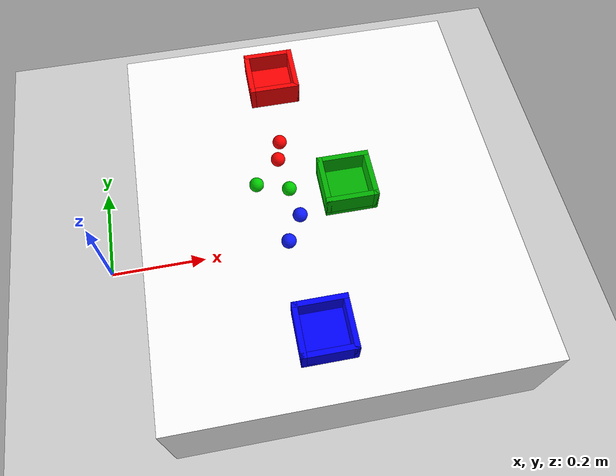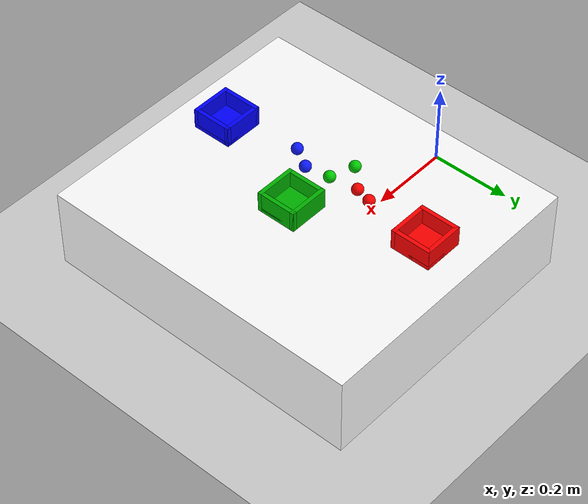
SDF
<?xml version="1.0" ?>
<sdf version="1.9">
  <world name="pick_and_place_world">

    <!-- Essential Gazebo Harmonic Plugins -->
    <plugin filename="gz-sim-physics-system"
            name="gz::sim::systems::Physics"></plugin>
    <plugin filename="gz-sim-scene-broadcaster-system"
            name="gz::sim::systems::SceneBroadcaster"></plugin>
    <plugin filename="gz-sim-user-commands-system"
            name="gz::sim::systems::UserCommands"></plugin>
    <plugin filename="gz-sim-sensors-system"
            name="gz::sim::systems::Sensors">
      <render_engine>ogre2</render_engine>
    </plugin>

    <!-- The Sun -->
    <light type="directional" name="sun">
      <cast_shadows>true</cast_shadows>
      <pose>0 0 10 0 0 0</pose>
      <diffuse>0.8 0.8 0.8 1</diffuse>
      <specular>0.2 0.2 0.2 1</specular>
      <direction>-0.5 0.1 -0.9</direction>
    </light>

    <!-- The Ground -->
    <model name="ground_plane">
      <static>true</static>
      <link name="link">
        <collision name="collision">
          <geometry><plane><normal>0 0 1</normal><size>100 100</size></plane></geometry>
        </collision>
        <visual name="visual">
          <geometry><plane><normal>0 0 1</normal><size>100 100</size></plane></geometry>
          <material>
            <ambient>0.8 0.8 0.8 1</ambient>
            <diffuse>0.8 0.8 0.8 1</diffuse>
          </material>
        </visual>
      </link>
    </model>

    <!-- The Table (placed 40cm in front of the robot) -->

    <model name="table">
      <static>true</static>

      <pose>0.45 0 0.1 0 0 0</pose>
      <link name="link">
        <collision name="collision">

          <geometry><box><size>0.7 0.8 0.2</size></box></geometry>
        </collision>
        <visual name="visual">

          <geometry><box><size>0.7 0.8 0.2</size></box></geometry>
          <material>
            <ambient>1 1 1 1</ambient>
            <diffuse>1 1 1 1</diffuse>
            <pbr>
              <metal>
                <albedo_map>materials/textures/chessboard.png</albedo_map>
                <scale>0.05 0.05</scale>
              </metal>
            </pbr>
          </material>
        </visual>
      </link>
    </model>

    <!-- ═══════════════════ BALLS ═══════════════════ -->

    <!-- Red Ball 1 -->
    <model name="ball_red_1">
      <static>false</static>
      <pose>0.38 0.08 0.22 0 0 0</pose>
      <link name="link">
        <collision name="collision">
          <geometry><sphere><radius>0.014</radius></sphere></geometry>
        </collision>
        <visual name="visual">
          <geometry><sphere><radius>0.014</radius></sphere></geometry>
          <material><ambient>1 0 0 1</ambient><diffuse>1 0 0 1</diffuse></material>
        </visual>
        <inertial><mass>0.05</mass>
          <inertia><ixx>1e-5</ixx><iyy>1e-5</iyy><izz>1e-5</izz></inertia>
        </inertial>
      </link>
    </model>

    <!-- Red Ball 2 -->
    <model name="ball_red_2">
      <static>false</static>
      <pose>0.39 0.12 0.22 0 0 0</pose>
      <link name="link">
        <collision name="collision">
          <geometry><sphere><radius>0.014</radius></sphere></geometry>
        </collision>
        <visual name="visual">
          <geometry><sphere><radius>0.014</radius></sphere></geometry>
          <material><ambient>1 0 0 1</ambient><diffuse>1 0 0 1</diffuse></material>
        </visual>
        <inertial><mass>0.05</mass>
          <inertia><ixx>1e-5</ixx><iyy>1e-5</iyy><izz>1e-5</izz></inertia>
        </inertial>
      </link>
    </model>

    <!-- Blue Ball 1 -->
    <model name="ball_blue_1">
      <static>false</static>
      <pose>0.40 -0.05 0.22 0 0 0</pose>
      <link name="link">
        <collision name="collision">
          <geometry><sphere><radius>0.014</radius></sphere></geometry>
        </collision>
        <visual name="visual">
          <geometry><sphere><radius>0.014</radius></sphere></geometry>
          <material>
            <ambient>0 0 1 1</ambient>
            <diffuse>0.05 0.1 1 1</diffuse>
          </material>
        </visual>
        <inertial><mass>0.05</mass>
          <inertia><ixx>1e-5</ixx><iyy>1e-5</iyy><izz>1e-5</izz></inertia>
        </inertial>
      </link>
    </model>

    <!-- Blue Ball 2 -->
    <model name="ball_blue_2">
      <static>false</static>
      <pose>0.37 -0.10 0.22 0 0 0</pose>
      <link name="link">
        <collision name="collision">
          <geometry><sphere><radius>0.014</radius></sphere></geometry>
        </collision>
        <visual name="visual">
          <geometry><sphere><radius>0.014</radius></sphere></geometry>
          <material>
            <ambient>0 0 1 1</ambient>
            <diffuse>0.05 0.1 1 1</diffuse>
          </material>
        </visual>
        <inertial><mass>0.05</mass>
          <inertia><ixx>1e-5</ixx><iyy>1e-5</iyy><izz>1e-5</izz></inertia>
        </inertial>
      </link>
    </model>

    <!-- Green Ball 1  ← جديد -->
    <model name="ball_green_1">
      <static>false</static>
      <pose>0.39 0.01 0.22 0 0 0</pose>
      <link name="link">
        <collision name="collision">
          <geometry><sphere><radius>0.014</radius></sphere></geometry>
        </collision>
        <visual name="visual">
          <geometry><sphere><radius>0.014</radius></sphere></geometry>
          <material>
            <ambient>0 0.8 0 1</ambient>
            <diffuse>0 0.8 0 1</diffuse>
          </material>
        </visual>
        <inertial><mass>0.05</mass>
          <inertia><ixx>1e-5</ixx><iyy>1e-5</iyy><izz>1e-5</izz></inertia>
        </inertial>
      </link>
    </model>

    <!-- Green Ball 2  ← جديد -->
    <model name="ball_green_2">
      <static>false</static>
      <pose>0.33 0.03 0.22 0 0 0</pose>
      <link name="link">
        <collision name="collision">
          <geometry><sphere><radius>0.014</radius></sphere></geometry>
        </collision>
        <visual name="visual">
          <geometry><sphere><radius>0.014</radius></sphere></geometry>
          <material>
            <ambient>0 0.8 0 1</ambient>
            <diffuse>0 0.8 0 1</diffuse>
          </material>
        </visual>
        <inertial><mass>0.05</mass>
          <inertia><ixx>1e-5</ixx><iyy>1e-5</iyy><izz>1e-5</izz></inertia>
        </inertial>
      </link>
    </model>

    <!-- ═══════════════════ BOXES ═══════════════════ -->

    <!-- Blue Target Box  (y = -0.28) -->
    <model name="box_blue">
      <static>true</static>
      <pose>0.4 -0.28 0.2 0 0 0</pose>
      <link name="floor">
        <pose>0 0 0 0 0 0</pose>
        <collision name="c"><geometry><box><size>0.1 0.1 0.02</size></box></geometry></collision>
        <visual name="v"><geometry><box><size>0.1 0.1 0.02</size></box></geometry>
          <material><ambient>0 0 1 1</ambient><diffuse>0 0 1 1</diffuse></material></visual>
      </link>
      <link name="left_wall">
        <pose>0 0.045 0 0 0 0</pose>
        <collision name="c"><geometry><box><size>0.1 0.01 0.1</size></box></geometry></collision>
        <visual name="v"><geometry><box><size>0.1 0.01 0.1</size></box></geometry>
          <material><ambient>0 0 1 1</ambient><diffuse>0 0 1 1</diffuse></material></visual>
      </link>
      <link name="right_wall">
        <pose>0 -0.045 0 0 0 0</pose>
        <collision name="c"><geometry><box><size>0.1 0.01 0.1</size></box></geometry></collision>
        <visual name="v"><geometry><box><size>0.1 0.01 0.1</size></box></geometry>
          <material><ambient>0 0 1 1</ambient><diffuse>0 0 1 1</diffuse></material></visual>
      </link>
      <link name="front_wall">
        <pose>0.045 0 0 0 0 0</pose>
        <collision name="c"><geometry><box><size>0.01 0.1 0.1</size></box></geometry></collision>
        <visual name="v"><geometry><box><size>0.01 0.1 0.1</size></box></geometry>
          <material><ambient>0 0 1 1</ambient><diffuse>0 0 1 1</diffuse></material></visual>
      </link>
      <link name="back_wall">
        <pose>-0.045 0 0 0 0 0</pose>
        <collision name="c"><geometry><box><size>0.01 0.1 0.1</size></box></geometry></collision>
        <visual name="v"><geometry><box><size>0.01 0.1 0.1</size></box></geometry>
          <material><ambient>0 0 1 1</ambient><diffuse>0 0 1 1</diffuse></material></visual>
      </link>
    </model>

    <!-- Red Target Box  (y = +0.28) -->
    <model name="box_red">
      <static>true</static>
      <pose>0.4 0.28 0.2 0 0 0</pose>
      <link name="floor">
        <pose>0 0 0 0 0 0</pose>
        <collision name="c"><geometry><box><size>0.1 0.1 0.02</size></box></geometry></collision>
        <visual name="v"><geometry><box><size>0.1 0.1 0.02</size></box></geometry>
          <material><ambient>1 0 0 1</ambient><diffuse>1 0 0 1</diffuse></material></visual>
      </link>
      <link name="left_wall">
        <pose>0 0.045 0 0 0 0</pose>
        <collision name="c"><geometry><box><size>0.1 0.01 0.1</size></box></geometry></collision>
        <visual name="v"><geometry><box><size>0.1 0.01 0.1</size></box></geometry>
          <material><ambient>1 0 0 1</ambient><diffuse>1 0 0 1</diffuse></material></visual>
      </link>
      <link name="right_wall">
        <pose>0 -0.045 0 0 0 0</pose>
        <collision name="c"><geometry><box><size>0.1 0.01 0.1</size></box></geometry></collision>
        <visual name="v"><geometry><box><size>0.1 0.01 0.1</size></box></geometry>
          <material><ambient>1 0 0 1</ambient><diffuse>1 0 0 1</diffuse></material></visual>
      </link>
      <link name="front_wall">
        <pose>0.045 0 0 0 0 0</pose>
        <collision name="c"><geometry><box><size>0.01 0.1 0.1</size></box></geometry></collision>
        <visual name="v"><geometry><box><size>0.01 0.1 0.1</size></box></geometry>
          <material><ambient>1 0 0 1</ambient><diffuse>1 0 0 1</diffuse></material></visual>
      </link>
      <link name="back_wall">
        <pose>-0.045 0 0 0 0 0</pose>
        <collision name="c"><geometry><box><size>0.01 0.1 0.1</size></box></geometry></collision>
        <visual name="v"><geometry><box><size>0.01 0.1 0.1</size></box></geometry>
          <material><ambient>1 0 0 1</ambient><diffuse>1 0 0 1</diffuse></material></visual>
      </link>
    </model>

    <!-- Green Target Box  (x = +0.62 — قدام)  ← جديد -->
    <model name="box_green">
      <static>true</static>
      <pose>0.5 0.0 0.2 0 0 0</pose>
      <link name="floor">
        <pose>0 0 0 0 0 0</pose>
        <collision name="c"><geometry><box><size>0.1 0.1 0.02</size></box></geometry></collision>
        <visual name="v"><geometry><box><size>0.1 0.1 0.02</size></box></geometry>
          <material><ambient>0 0.7 0 1</ambient><diffuse>0 0.7 0 1</diffuse></material></visual>
      </link>
      <link name="left_wall">
        <pose>0 0.045 0 0 0 0</pose>
        <collision name="c"><geometry><box><size>0.1 0.01 0.1</size></box></geometry></collision>
        <visual name="v"><geometry><box><size>0.1 0.01 0.1</size></box></geometry>
          <material><ambient>0 0.7 0 1</ambient><diffuse>0 0.7 0 1</diffuse></material></visual>
      </link>
      <link name="right_wall">
        <pose>0 -0.045 0 0 0 0</pose>
        <collision name="c"><geometry><box><size>0.1 0.01 0.1</size></box></geometry></collision>
        <visual name="v"><geometry><box><size>0.1 0.01 0.1</size></box></geometry>
          <material><ambient>0 0.7 0 1</ambient><diffuse>0 0.7 0 1</diffuse></material></visual>
      </link>
      <link name="front_wall">
        <pose>0.045 0 0 0 0 0</pose>
        <collision name="c"><geometry><box><size>0.01 0.1 0.1</size></box></geometry></collision>
        <visual name="v"><geometry><box><size>0.01 0.1 0.1</size></box></geometry>
          <material><ambient>0 0.7 0 1</ambient><diffuse>0 0.7 0 1</diffuse></material></visual>
      </link>
      <link name="back_wall">
        <pose>-0.045 0 0 0 0 0</pose>
        <collision name="c"><geometry><box><size>0.01 0.1 0.1</size></box></geometry></collision>
        <visual name="v"><geometry><box><size>0.01 0.1 0.1</size></box></geometry>
          <material><ambient>0 0.7 0 1</ambient><diffuse>0 0.7 0 1</diffuse></material></visual>
      </link>
    </model>

  </world>
</sdf>
